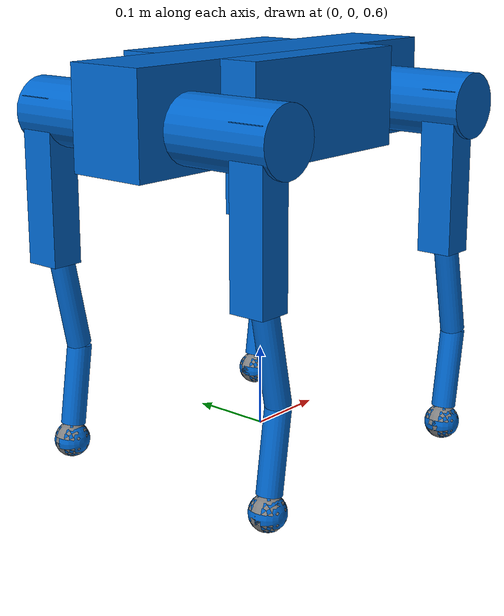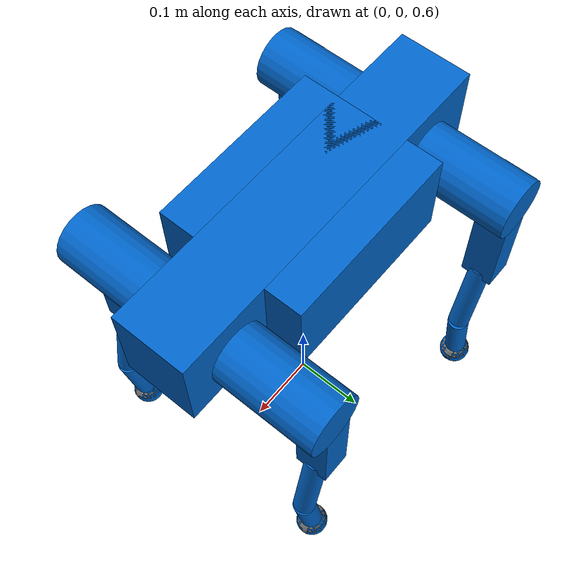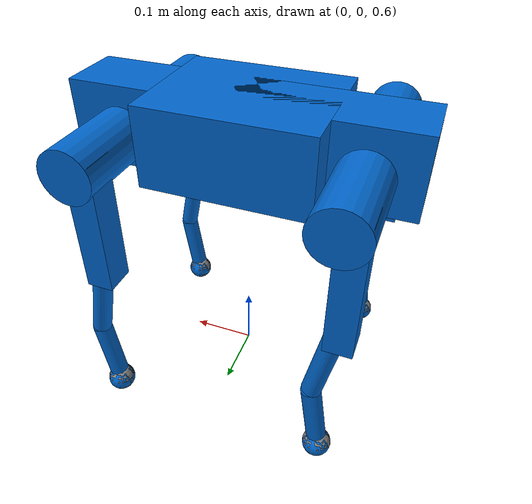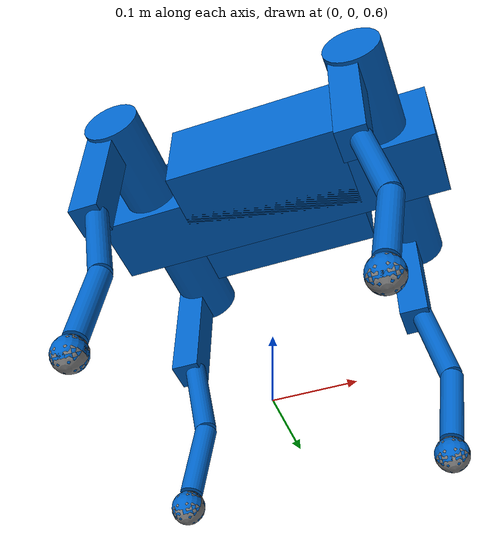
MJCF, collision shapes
<mujoco model="Lite3">
  <default>
    <default class="robot">
      <default class="motor">
        <joint />
        <motor />
      </default>
      <default class="visual">
        <geom material="visualgeom" contype="0" conaffinity="0" group="2" />
      </default>
      <default class="collision">
        <geom material="collision_material" condim="3" contype="0" conaffinity="1" group="1" solref="0.005 1" friction="1 0.01 0.01" />
        <equality solimp="0.99 0.999 1e-05" solref="0.005 1" />
      </default>
    </default>
  </default>

  <compiler angle="radian" meshdir="assets" />
  <!-- timestep 不在此声明：运行时统一取 contract.json control.physics_hz -->
  <option gravity="0 0 -9.81" integrator="implicitfast" cone="elliptic" impratio="100" />
  <compiler autolimits="true"/>

  <asset>
    <material name="default_material" rgba="0.7 0.7 0.7 1" />
    <material name="collision_material" rgba="0.0 0.4 0.8 0.2" />
    <texture type="2d" name="checker" builtin="checker" rgb1="0.2 0.3 0.4" rgb2="0.9 0.9 0.9" width="500" height="500"/>
    <material name="checker_mat" texture="checker" specular="1" shininess="1" texrepeat="15 15"/>
    <mesh name="torso.STL" file="torso.STL" />
    <mesh name="fl_hip.STL" file="hip.STL" />
    <mesh name="fl_thigh.STL" file="thigh.STL" />
    <mesh name="fl_shank_collision.STL" file="shank.STL" />
    <mesh name="fr_hip.STL" file="hip.STL" />
    <mesh name="fr_thigh.STL" file="thigh.STL" scale="1 -1 1"/>
    <mesh name="fr_shank_collision.STL" file="shank.STL" />
    <mesh name="hl_hip.STL" file="hip.STL" />
    <mesh name="hl_thigh.STL" file="thigh.STL" />
    <mesh name="hl_shank_collision.STL" file="shank.STL" />
    <mesh name="hr_hip.STL" file="hip.STL" />
    <mesh name="hr_thigh.STL" file="thigh.STL" scale="1 -1 1"/>
    <mesh name="hr_shank_collision.STL" file="shank.STL" />
  </asset>

  <worldbody>
    <light directional="true" pos="-0.5 0.5 3" dir="0 0 -1"/>

    <body name="base_link" pos="0 0. 1." quat="1 0 0 0" childclass="robot">
      <freejoint name="floating_base" />
      <site name="imu_site" pos="0 0 0" size="0.005" rgba="1 0 0 1"/>
      <inertial pos="0 0 0" mass="5.6056" diaginertia="0.02456 0.05518 0.07016"/>
      <geom name="TORSO_collision" type="box" size="0.25 0.05 0.06" pos="0 0 0.01" quat="1.000000 0.000000 0.000000 0.000000" class="collision" />
      <geom name="TORSO2_collision" type="box" size="0.125 0.1 0.06" pos="0 0 0.01" quat="1.000000 0.000000 0.000000 0.000000" class="collision" />
      <geom name="TORSO_visual" pos="0 0 0" quat="1 0 0 0" material="" type="mesh" mesh="torso.STL" class="visual" />
      <body name="FL_HIP" pos="0.1745 0.062 0" quat="1.0 0.0 0.0 0.0">
        <joint name="FL_HipX_joint" type="hinge" ref="0.0" class="motor" range="-0.523 0.523" axis="-1 0 0" armature="0.01" frictionloss="0.2" />
        <inertial pos="-0.00601 -0.0066532 0.00034295" quat="1.0 0.0 0.0 0.0" mass="0.550" diaginertia="0.0003949 0.0004028 0.0004472" />
        <geom name="FL_HipX_collision" type="cylinder" size="0.04 0.075" pos="0 0.05 0" quat="0.707107 0.707107 0.000000 0.000000" class="collision" />
        <geom name="FL_HIP_visual" pos="0 0 0" quat="1 0 0 0" material="" type="mesh" mesh="fl_hip.STL" class="visual" />
        <body name="FL_THIGH" pos="0 0.09735 0" quat="1.0 0.0 0.0 0.0">
          <joint name="FL_HipY_joint" type="hinge" ref="0.0" class="motor" range="-2.67 0.314" axis="0 -1 0" armature="0.01" frictionloss="0.2" />
          <inertial pos="-0.0039245 -0.014632 -0.025146" quat="1.0 0.0 0.0 0.0" mass="0.86" diaginertia="0.005736 0.00496 0.001436" />
          <geom name="FL_HipY_collision" type="box" size="0.02 0.0225 0.1" pos="-0.015 0 -0.08" quat="1.000000 0.000000 0.000000 0.000000" class="collision" />
          <geom name="FL_THIGH_visual" pos="0 0 0" quat="1 0 0 0" material="" type="mesh" mesh="fl_thigh.STL" class="visual" />
          <body name="FL_SHANK" pos="0 0 -0.20" quat="1.0 0.0 0.0 0.0">
            <joint name="FL_Knee_joint" type="hinge" ref="0.0" class="motor" range="0.524 2.792" axis="0 -1 0" armature="0.01" frictionloss="0.2" />
            <inertial pos="0.0064794 -1.4535E-06 -0.12157" quat="1.0 0.0 0.0 0.0" mass="0.153" diaginertia="0.00089039 0.00090672 3.1266e-05" />
            <geom name="FL_Knee_collision" type="cylinder" size="0.015 0.06" pos="0.005 0 -0.03" quat="0.995004 0.000000 -0.099833 0.000000" class="collision" />
            <geom name="FL_Knee2_collision" type="cylinder" size="0.015 0.05" pos="0.01 0 -0.14" quat="0.997189 0.000000 0.074930 0.000000" class="collision" />
            <geom name="FL_SHANK_visual" pos="0 0 0" quat="1 0 0 0" material="" type="mesh" mesh="fl_shank_collision.STL" class="visual" />
            <body name="FL_FOOT" pos="0 0 -0.21012" quat="1.0 0.0 0.0 0.0">
              <site name="FL" pos="0 0 0" type="sphere" size="0.022"/>
              <inertial pos="0 0 0" mass="0.02" diaginertia="0.0 0.0 0.0" />
              <geom name="FL_FOOT_collision" pos="0 0 0" quat="0.7071067811882787 0.7071067811848163 0.0 0.0" type="sphere" size="0.022" class="collision" />
              <geom name="FL_FOOT_visual" pos="0 0 0" quat="1 0 0 0" material="" type="sphere" size="0.022" class="visual" />

            </body>
          </body>
        </body>
      </body>
      <body name="FR_HIP" pos="0.1745 -0.062 0" quat="1.0 0.0 0.0 0.0">
        <joint name="FR_HipX_joint" type="hinge" ref="0.0" class="motor" range="-0.523 0.523" axis="-1 0 0" armature="0.01" frictionloss="0.2" />
        <inertial pos="-0.010579 0.011358 0.00048546" quat="1.0 0.0 0.0 0.0" mass="0.550" diaginertia="0.0004472 0.0004028 0.0003949" />
        <geom name="FR_HipX_collision" type="cylinder" size="0.04 0.075" pos="0 -0.05 0" quat="0.707107 0.707107 0.000000 0.000000" class="collision" />
        <geom name="FR_HIP_visual" pos="0 0 0" quat="1 0 0 0" material="" type="mesh" mesh="fr_hip.STL" class="visual" />
        <body name="FR_THIGH" pos="0 -0.09735 0" quat="1.0 0.0 0.0 0.0">
          <joint name="FR_HipY_joint" type="hinge" ref="0.0" class="motor" range="-2.67 0.314" axis="0 -1 0" armature="0.01" frictionloss="0.2" />
          <inertial pos="-0.0039245 0.014632 -0.025146" quat="1.0 0.0 0.0 0.0" mass="0.86" diaginertia="0.005736 0.00496 0.001436" />
          <geom name="FR_HipY_collision" type="box" size="0.02 0.0225 0.1" pos="-0.015 0 -0.08" quat="1.000000 0.000000 0.000000 0.000000" class="collision" />
          <geom name="FR_THIGH_visual" pos="0 0 0" quat="1 0 0 0" material="" type="mesh" mesh="fr_thigh.STL" class="visual" />
          <body name="FR_SHANK" pos="0 0 -0.20" quat="1.0 0.0 0.0 0.0">
            <joint name="FR_Knee_joint" type="hinge" ref="0.0" class="motor" range="0.524 2.792" axis="0 -1 0" armature="0.01" frictionloss="0.2" />
            <inertial pos="0.0064794 -1.4552E-06 -0.12157" quat="1.0 0.0 0.0 0.0" mass="0.153" diaginertia="0.00089039 0.00090672 3.1266e-05" />
            <geom name="FR_Knee_collision" type="cylinder" size="0.015 0.06" pos="0.005 0 -0.03" quat="0.995004 0.000000 -0.099833 0.000000" class="collision" />
            <geom name="FR_Knee2_collision" type="cylinder" size="0.015 0.05" pos="0.01 0 -0.14" quat="0.997189 0.000000 0.074930 0.000000" class="collision" />
            <geom name="FR_SHANK_visual" pos="0 0 0" quat="1 0 0 0" material="" type="mesh" mesh="fr_shank_collision.STL" class="visual" />
            <body name="FR_FOOT" pos="0 0 -0.21012" quat="1.0 0.0 0.0 0.0">
              <site name="FR" pos="0 0 0" type="sphere" size="0.022"/>
              <inertial pos="0 0 0" mass="0.02" diaginertia="0.0 0.0 0.0" />
              <geom name="FR_FOOT_collision" pos="0 0 0" quat="0.7071067811882787 0.7071067811848163 0.0 0.0" type="sphere" size="0.022" class="collision" />
              <geom name="FR_FOOT_visual" pos="0 0 0" quat="1 0 0 0" material="" type="sphere" size="0.022" class="visual" />
            </body>
          </body>
        </body>
      </body>
      <body name="HL_HIP" pos="-0.1745 0.062 0" quat="1.0 0.0 0.0 0.0">
        <joint name="HL_HipX_joint" type="hinge" ref="0.0" class="motor" range="-0.523 0.523" axis="-1 0 0" armature="0.01" frictionloss="0.2" />
        <inertial pos="0.010905 -0.012636 0.001051" quat="1.0 0.0 0.0 0.0" mass="0.550" diaginertia="0.0003949 0.0004028 0.0004472" />
        <geom name="HL_HipX_collision" type="cylinder" size="0.04 0.075" pos="0 0.05 0" quat="0.707107 0.707107 0.000000 0.000000" class="collision" />
        <geom name="HL_HIP_visual" pos="0 0 0" quat="1 0 0 0" material="" type="mesh" mesh="hl_hip.STL" class="visual" />
        <body name="HL_THIGH" pos="0 0.09735 0" quat="1.0 0.0 0.0 0.0">
          <joint name="HL_HipY_joint" type="hinge" ref="0.0" class="motor" range="-2.67 0.314" axis="0 -1 0" armature="0.01" frictionloss="0.2" />
          <inertial pos="-0.0039245 -0.014632 -0.025146" quat="1.0 0.0 0.0 0.0" mass="0.86" diaginertia="0.005736 0.00496 0.001436" />
          <geom name="HL_HipY_collision" type="box" size="0.02 0.0225 0.1" pos="-0.015 0 -0.08" quat="1.000000 0.000000 0.000000 0.000000" class="collision" />
          <geom name="HL_THIGH_visual" pos="0 0 0" quat="1 0 0 0" material="" type="mesh" mesh="hl_thigh.STL" class="visual" />
          <body name="HL_SHANK" pos="0 0 -0.20" quat="1.0 0.0 0.0 0.0">
            <joint name="HL_Knee_joint" type="hinge" ref="0.0" class="motor" range="0.524 2.792" axis="0 -1 0" armature="0.01" frictionloss="0.2" />
            <inertial pos="0.0064794 -1.4558E-06 -0.12157" quat="1.0 0.0 0.0 0.0" mass="0.153" diaginertia="0.00089039 0.00090672 3.1266e-05" />
            <geom name="HL_Knee_collision" type="cylinder" size="0.015 0.06" pos="0.005 0 -0.03" quat="0.995004 0.000000 -0.099833 0.000000" class="collision" />
            <geom name="HL_Knee2_collision" type="cylinder" size="0.015 0.05" pos="0.01 0 -0.14" quat="0.997189 0.000000 0.074930 0.000000" class="collision" />
            <geom name="HL_SHANK_visual" pos="0 0 0" quat="1 0 0 0" material="" type="mesh" mesh="hl_shank_collision.STL" class="visual" />
            <body name="HL_FOOT" pos="0 0 -0.21012" quat="1.0 0.0 0.0 0.0">
              <site name="HL" pos="0 0 0" type="sphere" size="0.022"/>
              <inertial pos="0 0 0" mass="0.02" diaginertia="0.0 0.0 0.0" />
              <geom name="HL_FOOT_collision" pos="0 0 0" quat="0.7071067811882787 0.7071067811848163 0.0 0.0" type="sphere" size="0.022" class="collision" />
              <geom name="HL_FOOT_visual" pos="0 0 0" quat="1 0 0 0" material="" type="sphere" size="0.022" class="visual" />
            </body>
          </body>
        </body>
      </body>
      <body name="HR_HIP" pos="-0.1745 -0.062 0" quat="1.0 0.0 0.0 0.0">
        <joint name="HR_HipX_joint" type="hinge" ref="0.0" class="motor" range="-0.523 0.523" axis="-1 0 0" armature="0.01" frictionloss="0.2" />
        <inertial pos="0.010354 0.011423 0.00049498" quat="1.0 0.0 0.0 0.0" mass="0.550" diaginertia="0.0003949 0.0004028 0.0004472" />
        <geom name="HR_HipX_collision" type="cylinder" size="0.04 0.075" pos="0 -0.05 0" quat="0.707107 0.707107 0.000000 0.000000" class="collision" />
        <geom name="HR_HIP_visual" pos="0 0 0" quat="1 0 0 0" material="" type="mesh" mesh="hr_hip.STL" class="visual" />
        <body name="HR_THIGH" pos="0 -0.09735 0" quat="1.0 0.0 0.0 0.0">
          <joint name="HR_HipY_joint" type="hinge" ref="0.0" class="motor" range="-2.67 0.314" axis="0 -1 0" armature="0.01" frictionloss="0.2" />
          <inertial pos="-0.0039245 0.014632 -0.025146" quat="1.0 0.0 0.0 0.0" mass="0.86" diaginertia="0.005736 0.00496 0.001436" />
          <geom name="HR_HipY_collision" type="box" size="0.02 0.0225 0.1" pos="-0.015 0 -0.08" quat="1.000000 0.000000 0.000000 0.000000" class="collision" />
          <geom name="HR_THIGH_visual" pos="0 0 0" quat="1 0 0 0" material="" type="mesh" mesh="hr_thigh.STL" class="visual" />
          <body name="HR_SHANK" pos="0 0 -0.20" quat="1.0 0.0 0.0 0.0">
            <joint name="HR_Knee_joint" type="hinge" ref="0.0" class="motor" range="0.524 2.792" axis="0 -1 0" armature="0.01" frictionloss="0.2" />
            <inertial pos="0.0064794 -1.4529E-06 -0.12157" quat="1.0 0.0 0.0 0.0" mass="0.153" diaginertia="0.00089039 0.00090672 3.1266e-05" />
            <geom name="HR_Knee_collision" type="cylinder" size="0.015 0.06" pos="0.005 0 -0.03" quat="0.995004 0.000000 -0.099833 0.000000" class="collision" />
            <geom name="HR_Knee2_collision" type="cylinder" size="0.015 0.05" pos="0.01 0 -0.14" quat="0.997189 0.000000 0.074930 0.000000" class="collision" />
            <geom name="HR_SHANK_visual" pos="0 0 0" quat="1 0 0 0" material="" type="mesh" mesh="hr_shank_collision.STL" class="visual" />
            <body name="HR_FOOT" pos="0 0 -0.21012" quat="1.0 0.0 0.0 0.0">
              <site name="HR" pos="0 0 0" type="sphere" size="0.022"/>
              <inertial pos="0 0 0" mass="0.02" diaginertia="0.0 0.0 0.0" />
              <geom name="HR_FOOT_collision" pos="0 0 0" quat="0.7071067811882787 0.7071067811848163 0.0 0.0" type="sphere" size="0.022" class="collision" />
              <geom name="HR_FOOT_visual" pos="0 0 0" quat="1 0 0 0" material="" type="sphere" size="0.022" class="visual" />
            </body>
          </body>
        </body>
      </body>
      <site name="TORSO_site" pos="0 0 0" quat="1 0 0 0" />
      <camera name="front_camera" mode="track" fovy="90.0" quat="4.329780281177467e-17 4.329780281177466e-17 0.7071067811865475 0.7071067811865476" pos="0.0 2.0 0.5" />
      <camera name="side_camera" mode="track" fovy="90.0" quat="-0.5 -0.4999999999999999 0.5 0.5000000000000001" pos="-2.0 0.0 0.5" />
    </body>
  </worldbody>

  <actuator>
        <position name="FL_HipX_joint" joint="FL_HipX_joint" kp="30" kv="1" forcerange="-30 30" forcelimited="true" />
        <position name="FL_HipY_joint" joint="FL_HipY_joint" kp="30" kv="1" forcerange="-30 30" forcelimited="true" />
        <position name="FL_Knee_joint" joint="FL_Knee_joint" kp="30" kv="1" forcerange="-30 30" forcelimited="true" />
        <position name="FR_HipX_joint" joint="FR_HipX_joint" kp="30" kv="1" forcerange="-30 30" forcelimited="true" />
        <position name="FR_HipY_joint" joint="FR_HipY_joint" kp="30" kv="1" forcerange="-30 30" forcelimited="true" />
        <position name="FR_Knee_joint" joint="FR_Knee_joint" kp="30" kv="1" forcerange="-30 30" forcelimited="true" />
        <position name="HL_HipX_joint" joint="HL_HipX_joint" kp="30" kv="1" forcerange="-30 30" forcelimited="true" />
        <position name="HL_HipY_joint" joint="HL_HipY_joint" kp="30" kv="1" forcerange="-30 30" forcelimited="true" />
        <position name="HL_Knee_joint" joint="HL_Knee_joint" kp="30" kv="1" forcerange="-30 30" forcelimited="true" />
        <position name="HR_HipX_joint" joint="HR_HipX_joint" kp="30" kv="1" forcerange="-30 30" forcelimited="true" />
        <position name="HR_HipY_joint" joint="HR_HipY_joint" kp="30" kv="1" forcerange="-30 30" forcelimited="true" />
        <position name="HR_Knee_joint" joint="HR_Knee_joint" kp="30" kv="1" forcerange="-30 30" forcelimited="true" />
  </actuator>

  <contact>
    <exclude body1="base_link" body2="FL_HIP" />
    <exclude body1="FL_HIP" body2="FL_THIGH" />
    <exclude body1="FL_THIGH" body2="FL_SHANK" />
    <exclude body1="FL_SHANK" body2="FL_FOOT" />
    <exclude body1="base_link" body2="FR_HIP" />
    <exclude body1="FR_HIP" body2="FR_THIGH" />
    <exclude body1="FR_THIGH" body2="FR_SHANK" />
    <exclude body1="FR_SHANK" body2="FR_FOOT" />
    <exclude body1="base_link" body2="HL_HIP" />
    <exclude body1="HL_HIP" body2="HL_THIGH" />
    <exclude body1="HL_THIGH" body2="HL_SHANK" />
    <exclude body1="HL_SHANK" body2="HL_FOOT" />
    <exclude body1="base_link" body2="HR_HIP" />
    <exclude body1="HR_HIP" body2="HR_THIGH" />
    <exclude body1="HR_THIGH" body2="HR_SHANK" />
    <exclude body1="HR_SHANK" body2="HR_FOOT" />
  </contact>

  <sensor>
    <framepos name="TORSO_site_pos" objtype="site" objname="TORSO_site" />
    <framequat name="TORSO_site_quat" objtype="site" objname="TORSO_site" />
    <framelinvel name="TORSO_site_linvel" objtype="site" objname="TORSO_site" />
    <frameangvel name="TORSO_site_angvel" objtype="site" objname="TORSO_site" />
    <velocimeter name="TORSO_site_vel" site="TORSO_site" />
    <accelerometer name="imu_lin_acc" site="imu_site"/>
    <gyro name="imu_ang_vel" site="imu_site"/>
    <velocimeter name="imu_lin_vel" site="imu_site"/>
  </sensor>
</mujoco>
